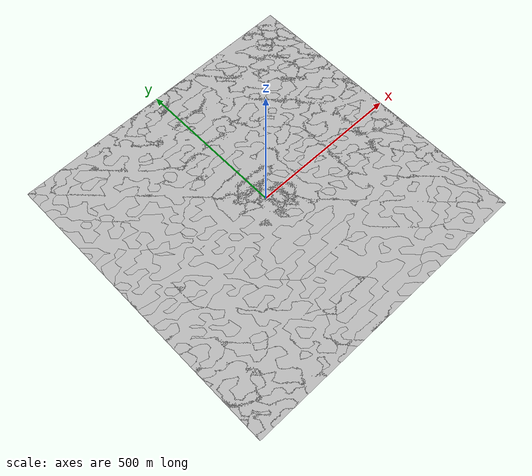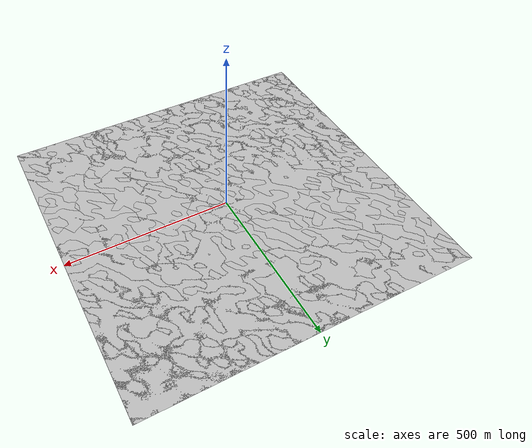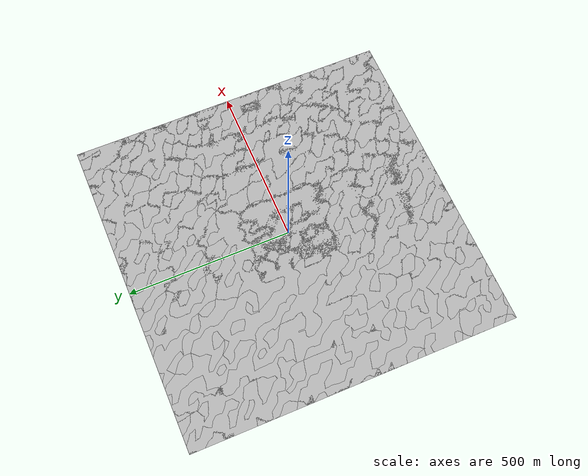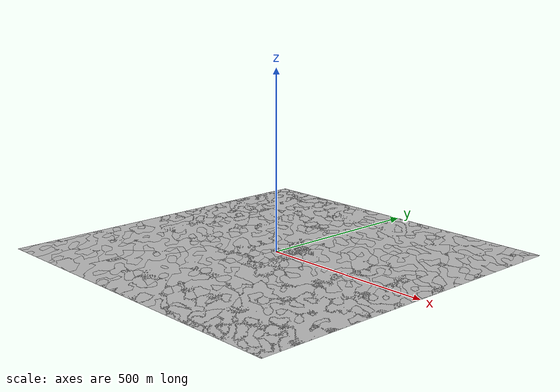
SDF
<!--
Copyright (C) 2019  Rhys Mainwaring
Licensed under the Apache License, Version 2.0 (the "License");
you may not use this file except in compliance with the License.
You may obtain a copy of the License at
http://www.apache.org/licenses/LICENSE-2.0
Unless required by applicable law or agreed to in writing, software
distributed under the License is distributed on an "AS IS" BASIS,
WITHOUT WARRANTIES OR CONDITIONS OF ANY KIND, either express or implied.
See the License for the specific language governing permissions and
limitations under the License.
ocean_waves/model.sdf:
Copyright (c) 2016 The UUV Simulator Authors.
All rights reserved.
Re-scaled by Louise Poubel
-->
<?xml version="1.0" ?>
<sdf version="1.6">
  <world name="ocean_world">

    <!-- GUI -->
    <gui>
      <plugin name="keyboard_gui_plugin" filename="libKeyboardGUIPlugin.so"/>
      <camera name='user_camera'>
        <pose frame=''>-12 0  5 0 0.27 0</pose>
        <view_controller>orbit</view_controller>
        <projection_type>perspective</projection_type>
      </camera>
    </gui>

    <!-- Scene -->
    <scene>
      <sky>
        <time>10</time>
        <sunrise>6</sunrise>
        <sunset>18</sunset>
        <clouds>
          <speed>12</speed>
          <direction>1.57079</direction>
        </clouds>
      </sky>
      <grid>false</grid>
      <origin_visual>false</origin_visual>
    </scene>

    <!-- Lights -->
    <include>
      <uri>model://sun</uri>
    </include>

    <!-- World models  -->
    <include>
      <uri>model://ocean_waves</uri>
    </include>

    <!-- Models  -->
    <!-- Add auto generated model with N buoys -->
    <model name="robotx_2018_qualifying_avoid_obstacles_buoys">
      <include>
        <uri>model://robotx_2018_qualifying_avoid_obstacles_buoys</uri>
      </include>
    </model>

  </world>
</sdf>

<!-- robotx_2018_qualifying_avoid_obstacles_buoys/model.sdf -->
<!-- automaticly generated by the 'generate_avoid_obstacls_buoys' script -->
<sdf version="1.6">
  <model name="robotx_obstacle_course">
  </model>
</sdf>

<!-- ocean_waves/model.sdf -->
<sdf version="1.6">
  <model name="ocean_waves">
    <static>true</static>
    <plugin name="wavefield_plugin" filename="libWavefieldModelPlugin.so">
      <static>false</static>
      <update_rate>30</update_rate>
      <size>1000 1000</size>
      <cell_count>50 50</cell_count>
      <wave>
				<model>PMS</model>
        <number>3</number>
        <scale>1.5</scale>
        <steepness>0.0</steepness>
        <amplitude>0.0</amplitude>  <!-- No effect for the PMS model -->
        <period>10</period>
				<gain>1.0</gain>
        <direction>1.0 0.0</direction>
				<angle>0.4</angle>
				<tau>1.0</tau>
      </wave>
    </plugin>

    <link name="ocean_waves_link">
      <visual name="ocean_waves_visual">
        <plugin name="ocean_waves_visual_plugin" filename="libWavefieldVisualPlugin.so">
          <wave>
            <model>PMS</model>
            <number>3</number>
            <scale>1.5</scale>
            <steepness>0.0</steepness>
            <amplitude>0.0</amplitude>  <!-- No effect for the PMS model -->
            <period>10</period>
            <gain>1.0</gain>
            <direction>1.0 0.0</direction>
            <angle>0.4</angle>
            <tau>1.0</tau>
          </wave>
        </plugin>
        <geometry>
          <mesh>
            <uri>model://ocean_waves/meshes/mesh.dae</uri>
          </mesh>
        </geometry>
        <material>
          <script>
            <uri>model://ocean_waves/materials/scripts/waves.material</uri>
            <name>WaveSim/GerstnerWaves</name>
          </script>
        </material>
      </visual>
      <visual name="ocean_waves_below_visual">
        <plugin name="ocean_waves_below_visual_plugin" filename="libWavefieldVisualPlugin.so">
          <wave>
            <model>PMS</model>
            <number>3</number>
            <scale>1.5</scale>
            <steepness>0.0</steepness>
            <amplitude>0.0</amplitude>  <!-- No effect for the PMS model -->
            <period>10</period>
            <gain>1.0</gain>
            <direction>1.0 0.0</direction>
            <angle>0.4</angle>
            <tau>1.0</tau>
          </wave>
        </plugin>
        <geometry>
          <mesh>
            <uri>model://ocean_waves/meshes/mesh_below.dae</uri>
          </mesh>
        </geometry>
        <material>
          <script>
            <uri>model://ocean_waves/materials/scripts/waves.material</uri>
            <name>WaveSim/GerstnerWaves</name>
          </script>
        </material>
      </visual>
    </link>
  </model>
</sdf>
